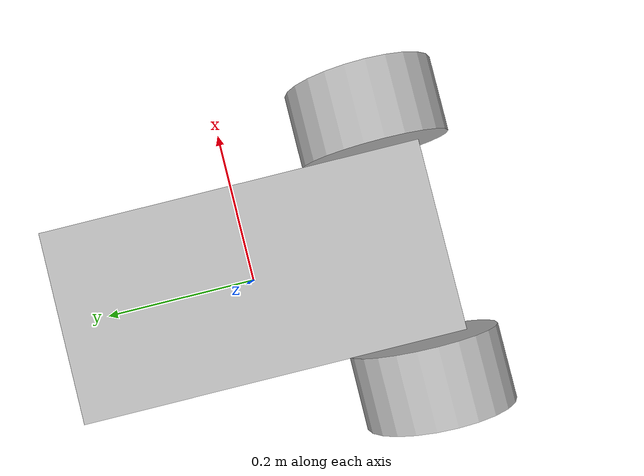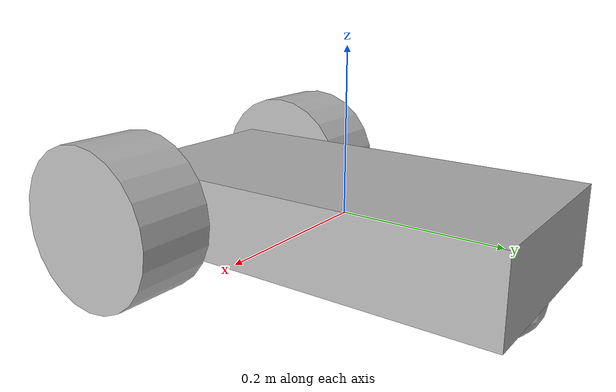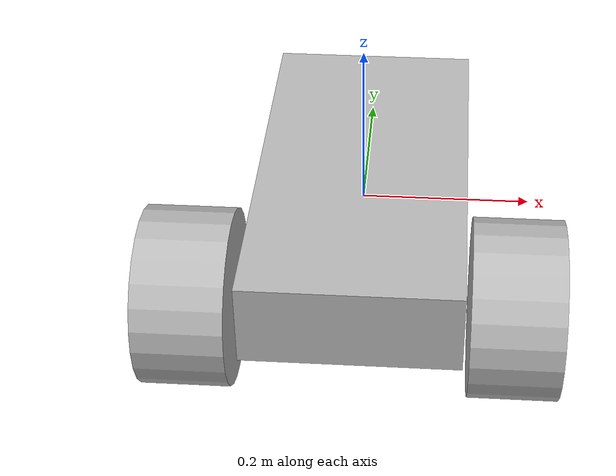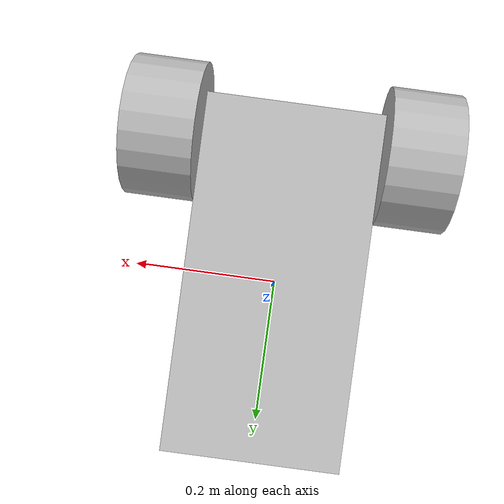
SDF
<?xml version='1.0'?>
<sdf version='1.7'>
  <model name='ROBO'>
    <link name='base_link'>
      <inertial>
        <pose>0 0 0 0 -0 0</pose>
        <mass>5</mass>
        <inertia>
          <ixx>0.10833</ixx>
          <ixy>0</ixy>
          <ixz>0</ixz>
          <iyy>0.1302</iyy>
          <iyz>0</iyz>
          <izz>0.0302</izz>
        </inertia>
      </inertial>
      <self_collide>0</self_collide>
      <enable_wind>0</enable_wind>
      <kinematic>0</kinematic>
      <pose>0 0 0 0 -0 0</pose>
      <visual name='base_link_visual'>
        <pose>0 0 0 0 -0 0</pose>
        <geometry>
          <box>
            <size>0.25 0.5 0.1</size>
          </box>
        </geometry>
        <material>
          <shader type='pixel'/>
        </material>
        <transparency>0</transparency>
        <cast_shadows>1</cast_shadows>
      </visual>
      <collision name='base_link_collision'>
        <laser_retro>0</laser_retro>
        <max_contacts>10</max_contacts>
        <pose>0 0 0 0 -0 0</pose>
        <geometry>
          <box>
            <size>0.25 0.5 0.1</size>
          </box>
        </geometry>
        <surface>
          <friction>
            <ode>
              <mu>1</mu>
              <mu2>1</mu2>
              <fdir1>0 0 0</fdir1>
              <slip1>0</slip1>
              <slip2>0</slip2>
            </ode>
            <torsional>
              <coefficient>1</coefficient>
              <patch_radius>0</patch_radius>
              <surface_radius>0</surface_radius>
              <use_patch_radius>1</use_patch_radius>
              <ode>
                <slip>0</slip>
              </ode>
            </torsional>
          </friction>
          <bounce>
            <restitution_coefficient>0</restitution_coefficient>
            <threshold>1e+06</threshold>
          </bounce>
          <contact>
            <collide_without_contact>0</collide_without_contact>
            <collide_without_contact_bitmask>1</collide_without_contact_bitmask>
            <collide_bitmask>1</collide_bitmask>
            <ode>
              <soft_cfm>0</soft_cfm>
              <soft_erp>0.2</soft_erp>
              <kp>1e+13</kp>
              <kd>1</kd>
              <max_vel>0.01</max_vel>
              <min_depth>0</min_depth>
            </ode>
            <bullet>
              <split_impulse>1</split_impulse>
              <split_impulse_penetration_threshold>-0.01</split_impulse_penetration_threshold>
              <soft_cfm>0</soft_cfm>
              <soft_erp>0.2</soft_erp>
              <kp>1e+13</kp>
              <kd>1</kd>
            </bullet>
          </contact>
        </surface>
      </collision>
    </link>
    <link name='front_wheel'>
      <pose>-0 0.2 -0.05 0 -0 0</pose>
      <inertial>
        <pose>0 0 0 0 -0 0</pose>
        <mass>1</mass>
        <inertia>
          <ixx>0.001</ixx>
          <ixy>0</ixy>
          <ixz>0</ixz>
          <iyy>0.001</iyy>
          <iyz>0</iyz>
          <izz>0.001</izz>
        </inertia>
      </inertial>
      <self_collide>0</self_collide>
      <enable_wind>0</enable_wind>
      <kinematic>0</kinematic>
      <visual name='front_wheel_visual'>
        <pose>0 0 0 0 -0 0</pose>
        <geometry>
          <sphere>
            <radius>0.05</radius>
          </sphere>
        </geometry>
        <material>
          <shader type='pixel'/>
        </material>
        <transparency>0</transparency>
        <cast_shadows>1</cast_shadows>
      </visual>
      <collision name='front_wheel_collision'>
        <laser_retro>0</laser_retro>
        <max_contacts>10</max_contacts>
        <pose>0 0 0 0 -0 0</pose>
        <geometry>
          <sphere>
            <radius>0.05</radius>
          </sphere>
        </geometry>
        <surface>
          <friction>
            <ode>
              <mu>1</mu>
              <mu2>1</mu2>
              <fdir1>0 0 0</fdir1>
              <slip1>0</slip1>
              <slip2>0</slip2>
            </ode>
            <torsional>
              <coefficient>1</coefficient>
              <patch_radius>0</patch_radius>
              <surface_radius>0</surface_radius>
              <use_patch_radius>1</use_patch_radius>
              <ode>
                <slip>0</slip>
              </ode>
            </torsional>
          </friction>
          <bounce>
            <restitution_coefficient>0</restitution_coefficient>
            <threshold>1e+06</threshold>
          </bounce>
          <contact>
            <collide_without_contact>0</collide_without_contact>
            <collide_without_contact_bitmask>1</collide_without_contact_bitmask>
            <collide_bitmask>1</collide_bitmask>
            <ode>
              <soft_cfm>0</soft_cfm>
              <soft_erp>0.2</soft_erp>
              <kp>1e+13</kp>
              <kd>1</kd>
              <max_vel>0.01</max_vel>
              <min_depth>0</min_depth>
            </ode>
            <bullet>
              <split_impulse>1</split_impulse>
              <split_impulse_penetration_threshold>-0.01</split_impulse_penetration_threshold>
              <soft_cfm>0</soft_cfm>
              <soft_erp>0.2</soft_erp>
              <kp>1e+13</kp>
              <kd>1</kd>
            </bullet>
          </contact>
        </surface>
      </collision>
    </link>
    <link name='left_wheel'>
      <pose>0.18 -0.2 -0 0 1.5707 0</pose>
      <inertial>
        <pose>0 0 0 0 -0 0</pose>
        <mass>1</mass>
        <inertia>
          <ixx>0.001</ixx>
          <ixy>0</ixy>
          <ixz>0</ixz>
          <iyy>0.001</iyy>
          <iyz>0</iyz>
          <izz>0.001</izz>
        </inertia>
      </inertial>
      <self_collide>0</self_collide>
      <enable_wind>0</enable_wind>
      <kinematic>0</kinematic>
      <visual name='left_wheel_visual'>
        <pose>0 0 0 0 -0 0</pose>
        <geometry>
          <cylinder>
            <length>0.1</length>
            <radius>0.1</radius>
          </cylinder>
        </geometry>
        <material>
          <shader type='pixel'/>
        </material>
        <transparency>0</transparency>
        <cast_shadows>1</cast_shadows>
      </visual>
      <collision name='left_wheel_collision'>
        <laser_retro>0</laser_retro>
        <max_contacts>10</max_contacts>
        <pose>0 0 0 0 -0 0</pose>
        <geometry>
          <cylinder>
            <radius>0.1</radius>
            <length>0.1</length>
          </cylinder>
        </geometry>
        <surface>
          <friction>
            <ode>
              <mu>1</mu>
              <mu2>1</mu2>
              <fdir1>0 0 0</fdir1>
              <slip1>0</slip1>
              <slip2>0</slip2>
            </ode>
            <torsional>
              <coefficient>1</coefficient>
              <patch_radius>0</patch_radius>
              <surface_radius>0</surface_radius>
              <use_patch_radius>1</use_patch_radius>
              <ode>
                <slip>0</slip>
              </ode>
            </torsional>
          </friction>
          <bounce>
            <restitution_coefficient>0</restitution_coefficient>
            <threshold>1e+06</threshold>
          </bounce>
          <contact>
            <collide_without_contact>0</collide_without_contact>
            <collide_without_contact_bitmask>1</collide_without_contact_bitmask>
            <collide_bitmask>1</collide_bitmask>
            <ode>
              <soft_cfm>0</soft_cfm>
              <soft_erp>0.2</soft_erp>
              <kp>1e+13</kp>
              <kd>1</kd>
              <max_vel>0.01</max_vel>
              <min_depth>0</min_depth>
            </ode>
            <bullet>
              <split_impulse>1</split_impulse>
              <split_impulse_penetration_threshold>-0.01</split_impulse_penetration_threshold>
              <soft_cfm>0</soft_cfm>
              <soft_erp>0.2</soft_erp>
              <kp>1e+13</kp>
              <kd>1</kd>
            </bullet>
          </contact>
        </surface>
      </collision>
    </link>
    <link name='right_wheel'>
      <pose>-0.18 -0.2 -0 0 1.5707 0</pose>
      <inertial>
        <pose>0 0 0 0 -0 0</pose>
        <mass>1</mass>
        <inertia>
          <ixx>0.001</ixx>
          <ixy>0</ixy>
          <ixz>0</ixz>
          <iyy>0.001</iyy>
          <iyz>0</iyz>
          <izz>0.001</izz>
        </inertia>
      </inertial>
      <self_collide>0</self_collide>
      <enable_wind>0</enable_wind>
      <kinematic>0</kinematic>
      <visual name='right_wheel_visual'>
        <pose>0 0 0 0 -0 0</pose>
        <geometry>
          <cylinder>
            <length>0.1</length>
            <radius>0.1</radius>
          </cylinder>
        </geometry>
        <material>
          <shader type='pixel'/>
        </material>
        <transparency>0</transparency>
        <cast_shadows>1</cast_shadows>
      </visual>
      <collision name='right_wheel_collision'>
        <laser_retro>0</laser_retro>
        <max_contacts>10</max_contacts>
        <pose>0 0 0 0 -0 0</pose>
        <geometry>
          <cylinder>
            <radius>0.1</radius>
            <length>0.1</length>
          </cylinder>
        </geometry>
        <surface>
          <friction>
            <ode>
              <mu>1</mu>
              <mu2>1</mu2>
              <fdir1>0 0 0</fdir1>
              <slip1>0</slip1>
              <slip2>0</slip2>
            </ode>
            <torsional>
              <coefficient>1</coefficient>
              <patch_radius>0</patch_radius>
              <surface_radius>0</surface_radius>
              <use_patch_radius>1</use_patch_radius>
              <ode>
                <slip>0</slip>
              </ode>
            </torsional>
          </friction>
          <bounce>
            <restitution_coefficient>0</restitution_coefficient>
            <threshold>1e+06</threshold>
          </bounce>
          <contact>
            <collide_without_contact>0</collide_without_contact>
            <collide_without_contact_bitmask>1</collide_without_contact_bitmask>
            <collide_bitmask>1</collide_bitmask>
            <ode>
              <soft_cfm>0</soft_cfm>
              <soft_erp>0.2</soft_erp>
              <kp>1e+13</kp>
              <kd>1</kd>
              <max_vel>0.01</max_vel>
              <min_depth>0</min_depth>
            </ode>
            <bullet>
              <split_impulse>1</split_impulse>
              <split_impulse_penetration_threshold>-0.01</split_impulse_penetration_threshold>
              <soft_cfm>0</soft_cfm>
              <soft_erp>0.2</soft_erp>
              <kp>1e+13</kp>
              <kd>1</kd>
            </bullet>
          </contact>
        </surface>
      </collision>
    </link>
    <joint name='base_to_front_wheel' type='ball'>
      <parent>base_link</parent>
      <child>front_wheel</child>
      <pose>0 0 0 0 -0 0</pose>
      <physics>
        <ode>
          <limit>
            <cfm>0</cfm>
            <erp>0.2</erp>
          </limit>
          <suspension>
            <cfm>0</cfm>
            <erp>0.2</erp>
          </suspension>
        </ode>
      </physics>
    </joint>
    <joint name='base_to_left_wheel' type='revolute'>
      <parent>base_link</parent>
      <child>left_wheel</child>
      <pose>0 0 0 0 -0 0</pose>
      <axis>
        <xyz>0 0 1</xyz>
        <limit>
          <lower>-1e+16</lower>
          <upper>1e+16</upper>
          <effort>-1</effort>
          <velocity>-1</velocity>
        </limit>
        <dynamics>
          <spring_reference>0</spring_reference>
          <spring_stiffness>0</spring_stiffness>
          <damping>0</damping>
          <friction>0</friction>
        </dynamics>
      </axis>
      <physics>
        <ode>
          <limit>
            <cfm>0</cfm>
            <erp>0.2</erp>
          </limit>
          <suspension>
            <cfm>0</cfm>
            <erp>0.2</erp>
          </suspension>
        </ode>
      </physics>
    </joint>
    <joint name='base_to_right_wheel' type='revolute'>
      <parent>base_link</parent>
      <child>right_wheel</child>
      <pose>0 0 0 0 -0 0</pose>
      <axis>
        <xyz>0 0 1</xyz>
        <limit>
          <lower>-1e+16</lower>
          <upper>1e+16</upper>
          <effort>-1</effort>
          <velocity>-1</velocity>
        </limit>
        <dynamics>
          <spring_reference>0</spring_reference>
          <spring_stiffness>0</spring_stiffness>
          <damping>0</damping>
          <friction>0</friction>
        </dynamics>
      </axis>
      <physics>
        <ode>
          <limit>
            <cfm>0</cfm>
            <erp>0.2</erp>
          </limit>
          <suspension>
            <cfm>0</cfm>
            <erp>0.2</erp>
          </suspension>
        </ode>
      </physics>
    </joint>
    <static>0</static>
    <allow_auto_disable>1</allow_auto_disable>
    <plugin name='diff_drive' filename='libgazebo_ros_diff_drive.so'>

      <ros>
        <namespace>/robo</namespace>
      </ros>

      <!-- wheels -->
      <left_joint>base_to_left_wheel</left_joint>
      <right_joint>base_to_right_wheel</right_joint>

      <!-- kinematics -->
      <wheel_separation>0.25</wheel_separation>
      <wheel_diameter>0.1</wheel_diameter>

      <!-- limits -->
      <max_wheel_torque>10</max_wheel_torque>
      <max_wheel_acceleration>1.0</max_wheel_acceleration>

      <!-- output -->
      <publish_odom>true</publish_odom>
      <publish_odom_tf>true</publish_odom_tf>

      <odometry_frame>odom_demo</odometry_frame>
      <robot_base_frame>base_link</robot_base_frame>

    </plugin>
  </model>
</sdf>
